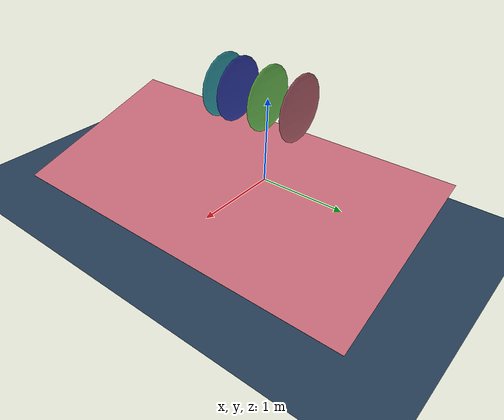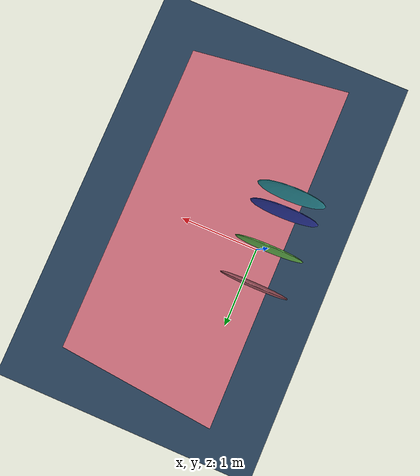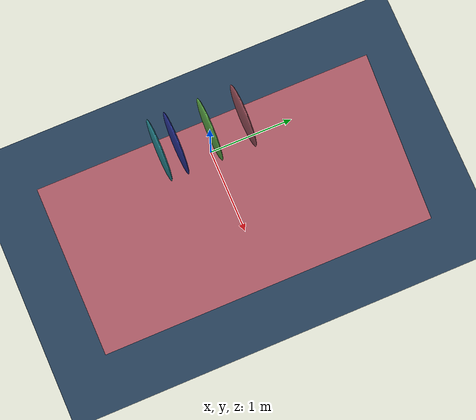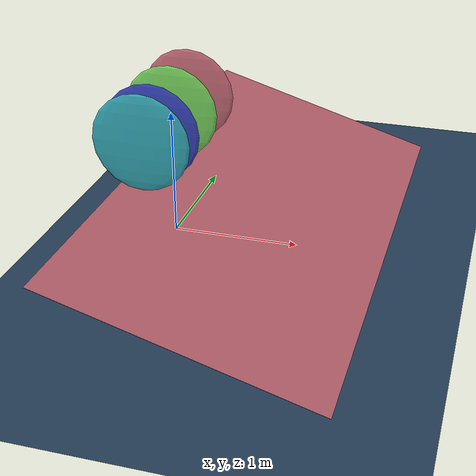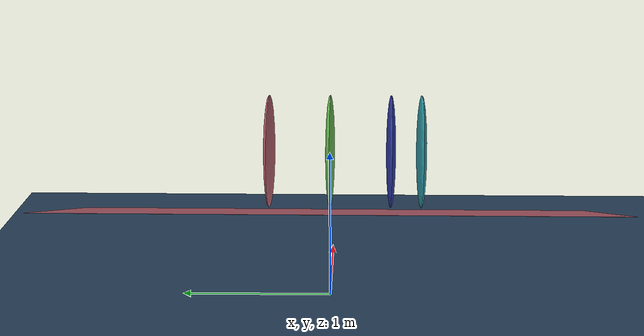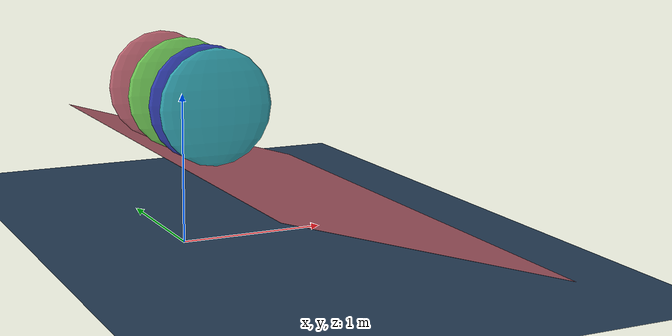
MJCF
<mujoco>
      <asset>
        <texture name="grid" type="2d" builtin="checker" rgb1=".1 .2 .3" rgb2=".2 .3 .4" width="512" height="512"/>
        <texture name="grid2" type="2d" builtin="checker" rgb1="1 .2 .2" rgb2=".5 .6 .7" width="231" height="231"/>
        <texture name="grid3" type="2d" builtin="checker" rgb1=".2 1 .2" rgb2=".7 .6 .5" width="231" height="231"/>
        <texture name="grid4" type="2d" builtin="checker" rgb1=".2 .2 1" rgb2=".2 .3 .4" width="231" height="231"/>
        <texture name="grid5" type="2d" builtin="checker" rgb1=".2 1 1" rgb2=".2 .3 .4" width="231" height="231"/>

        <material name="grid" texture="grid" texrepeat="2 2" texuniform="true" reflectance="0.2"/>
        <material name="grid2" texture="grid2" texrepeat="2 2" texuniform="true"/>
        <material name="grid3" texture="grid3" texrepeat="2 2" texuniform="true"/>
        <material name="grid4" texture="grid4" texrepeat="2 2" texuniform="true"/>
        <material name="grid5" texture="grid5" texrepeat="2 2" texuniform="true"/>

        <material name="frame" rgba="0.8 0.6 0.4 1"/>
    </asset>

    <visual>
        <global offwidth="1280"/>
    </visual>

    <worldbody>
        <light pos="0 0 1"/>
        <camera name="top" pos="2 -4 2" xyaxes="2 0.0 0 0.27 0.33 0.9"/>
        <geom name="floor" type="plane" size="4 4 .01" pos="0 0  0" material="grid"/>
        <geom name="ramp" type="plane" size="1 2 .01" pos=".75 0  .35" material="grid2" zaxis=".3 0 1" />

        <!-- red Wheel -->
        <body name="wheel1" >
            <freejoint name="root1"/>
            <geom name="wheel1" type="ellipsoid" size=".37 .03 .37" pos="0 0.4 1.01" material="grid2" mass="2"/>
        </body>

        <!-- green Hoop -->
        <body name="wheel2" >
            <freejoint name="root2"/>
            <geom name="wheel2" type="ellipsoid" size=".37 .03 .37" pos="0 0 1.01" material="grid3"/>
            <inertial pos="0 0 1.01" mass="2" diaginertia="0.1369 0.2738 0.1369"/>
        </body>

        <!--blue Ring -->
        <body name="wheel3" >
            <freejoint name="root3"/>
            <geom name="wheel3" type="ellipsoid" size=".37 .03 .37" pos="0 -0.4 1.01" material="grid4"/>
            <inertial pos="0 -0.4 1.01" mass="2" diaginertia=" 0.169 0.2525 0.169"/>
        </body>

        <!-- teal cylinder -->

        <body name="wheel4" >
            <freejoint name="root4"/>
            <geom name="wheel4" type="ellipsoid" size=".37 .03 .37" pos="0 -0.6 1.01" material="grid5"/>
            <inertial pos="0 -0.6 1.01" mass="2" diaginertia="0.0686 0.1369 0.0686"/>
        </body>

    </worldbody>
</mujoco>
